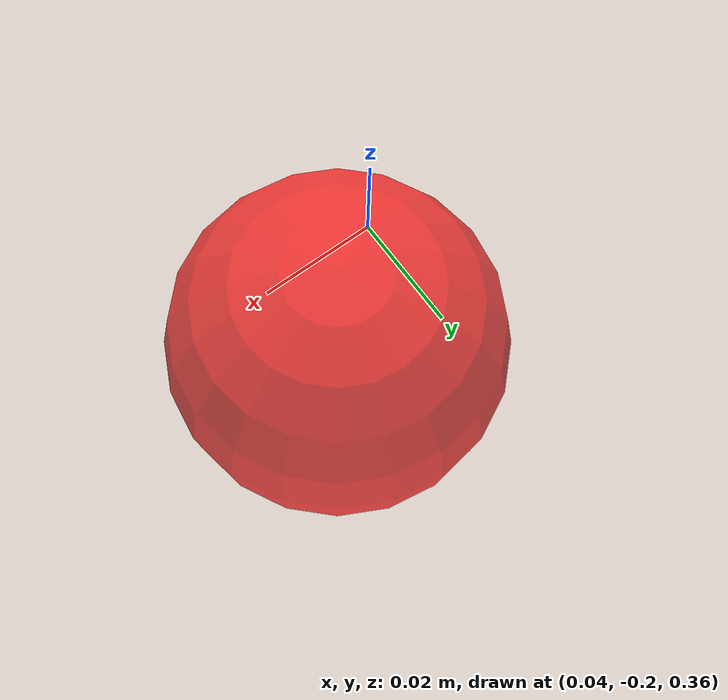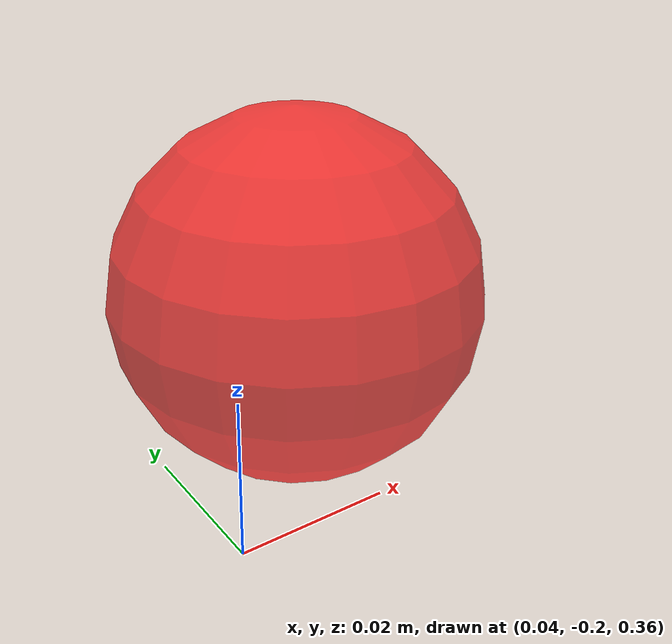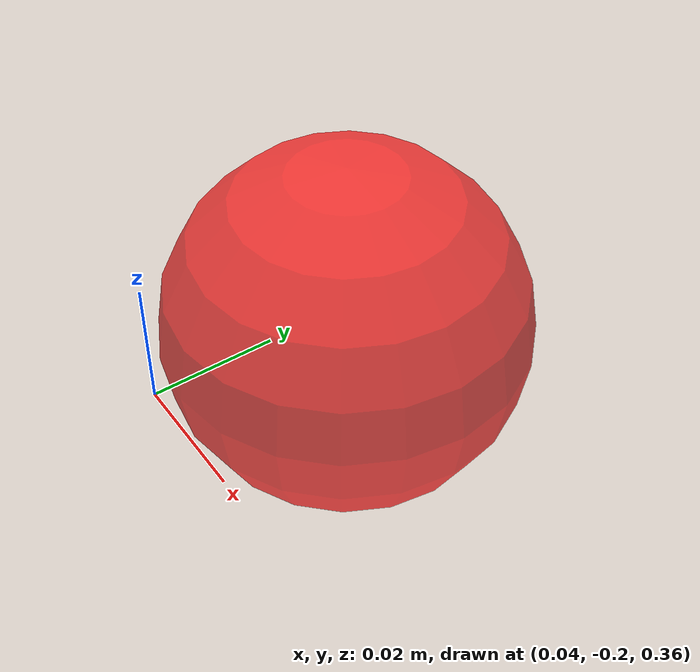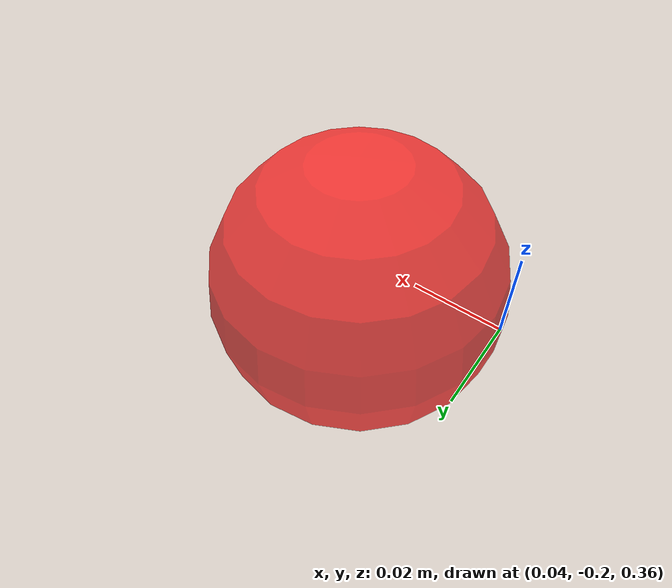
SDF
<?xml version="1.0" ?>

<sdf version="1.6">
  <world name="default">

    <!-- Plugin for simulating physics -->
    <plugin
      filename="gz-sim-physics-system"
      name="gz::sim::systems::Physics">
      <engine>
        <filename>libgz-physics-bullet-featherstone-plugin.so</filename>
      </engine>
    </plugin>

    <!-- Plugin for handling user commands -->
    <plugin
      filename="gz-sim-user-commands-system"
      name="gz::sim::systems::UserCommands">
    </plugin>

    <!-- Plugin for broadcasting scene updates -->
    <plugin
      filename="gz-sim-scene-broadcaster-system"
      name="gz::sim::systems::SceneBroadcaster">
    </plugin>

    <!-- Plugin for handling sensors like the LIDAR -->
    <plugin
      filename="gz-sim-sensors-system"
      name="gz::sim::systems::Sensors">
      <render_engine>ogre2</render_engine>
    </plugin>

    <!-- Plugin for IMU -->
    <plugin filename="gz-sim-imu-system"
      name="gz::sim::systems::Imu">
    </plugin>

    <!-- To add realistic gravity, do: 0.0 0.0 -9.8, otherwise do 0.0 0.0 0.0 -->
    <gravity>0.0 0.0 -9.8</gravity>

    <!-- Include a model of the Sun from an external URI -->
    <include>
      <uri>
        https://fuel.gazebosim.org/1.0/OpenRobotics/models/Sun
      </uri>
    </include>

    <!-- Local Ground Plane with modified friction -->
    <model name="ground_plane">
      <static>true</static>
      <link name="link">
        <collision name="collision">
          <geometry>
            <plane>
              <normal>0 0 1</normal>
            </plane>
          </geometry>
          <surface>
            <friction>
              <torsional>
                <coefficient>0.0</coefficient>
              </torsional>
            </friction>
          </surface>
        </collision>
        <visual name="visual">
          <geometry>
            <plane>
              <normal>0 0 1</normal>
              <size>100 100</size>
            </plane>
          </geometry>
          <material>
            <ambient>0.8 0.8 0.8 1</ambient>
            <diffuse>0.8 0.8 0.8 1</diffuse>
            <specular>0.8 0.8 0.8 1</specular>
          </material>
        </visual>
      </link>
    </model>

    <!-- Custom Red Target Sphere -->
    <model name="red_target_sphere">
      <static>true</static>
      <pose>0.06062 -0.18 0.38 0 0 0</pose>
      <link name="sphere_link">
        <visual name="sphere_visual">
          <geometry>
            <sphere>
              <radius>0.025</radius>
            </sphere>
          </geometry>
          <material>
            <ambient>1.0 0.0 0.0 0.7</ambient>
            <diffuse>1.0 0.0 0.0 0.7</diffuse>
            <specular>0.8 0.2 0.2 0.7</specular>
          </material>
        </visual>
        <!-- NO collision para que sea traspasable -->
      </link>
    </model>

    <!-- Define scene properties -->
    <scene>
      <shadows>false</shadows>
    </scene>

  </world>
</sdf>
